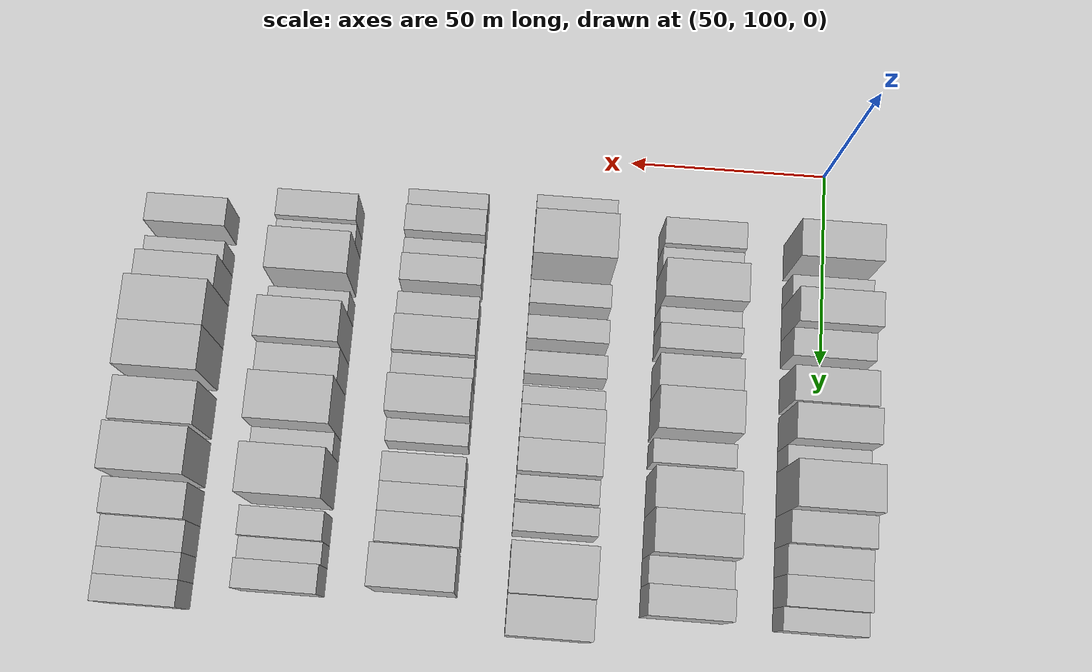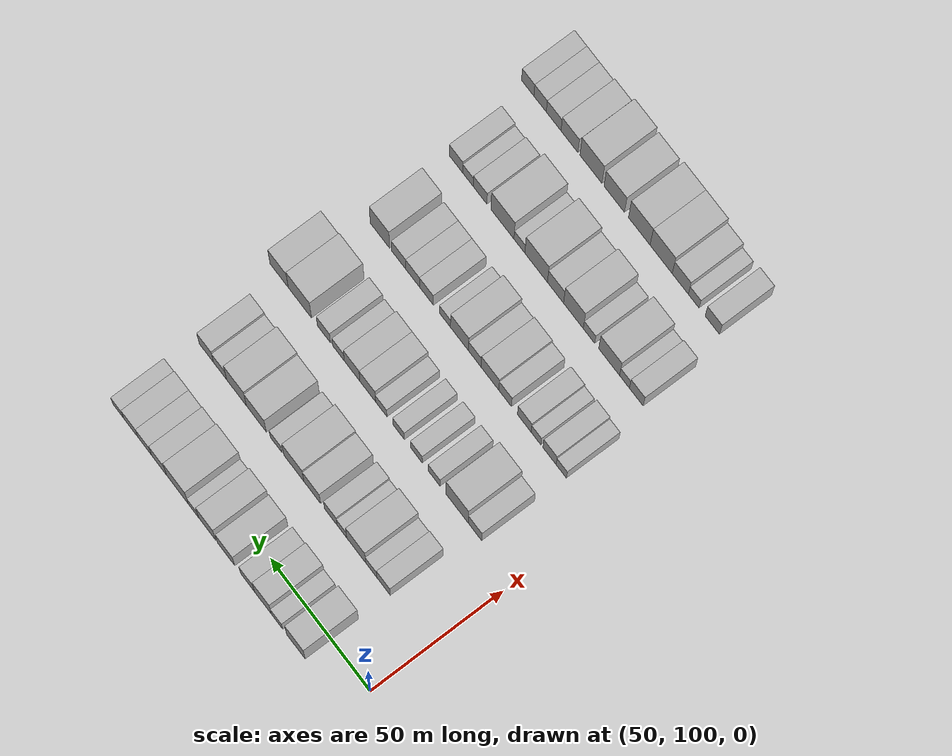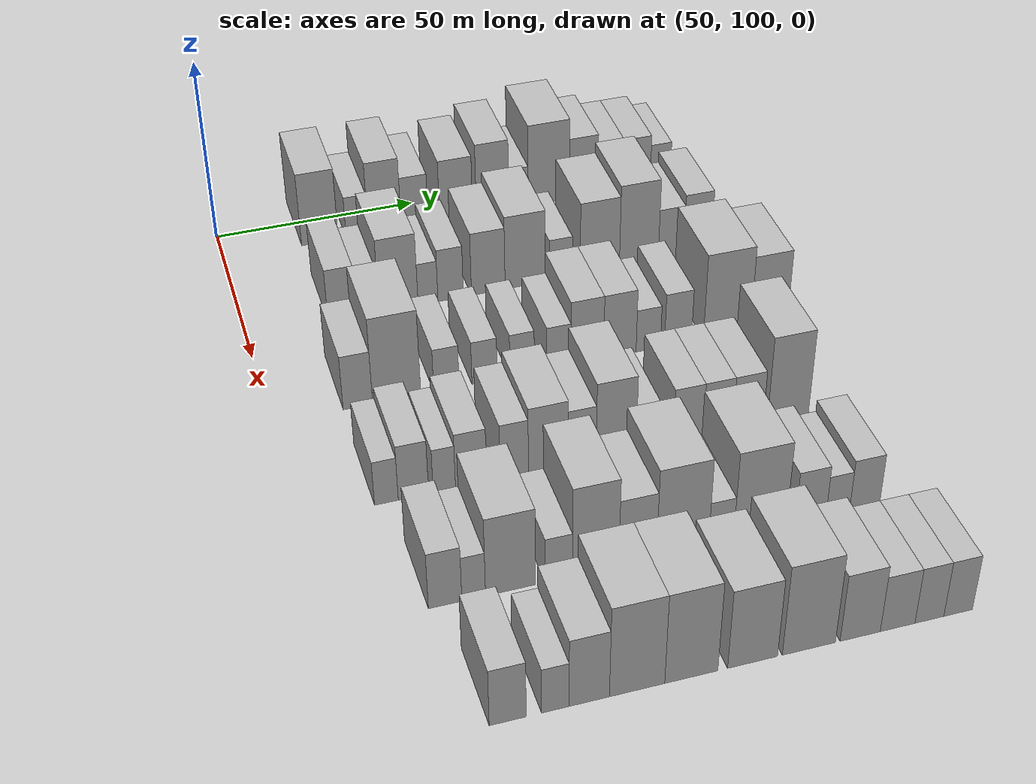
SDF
<sdf version="1.6">
 <world name="default">
  <model name="building_78">
   <static>1</static>
   <pose>50.0000 124.1035 0 0.000000 0.000000 0.000000</pose>
   <link name="link">
    <pose>0 0 10.50 0 0 0</pose>
    <collision name="collision"><geometry><box><size>20.0000 9.2845 21.0000</size></box></geometry></collision>
    <visual name="visual">
     <cast_shadows>0</cast_shadows>
     <geometry><box><size>20.0000 9.2845 21.0000</size></box></geometry>
     <material>
      <script>
       <uri>model://HANNAS_wall/materials/scripts</uri>
       <uri>model://HANNAS_wall/materials/textures</uri>
       <name>vrc/HANNAS_wall</name>
      </script>
     </material>
    </visual>
   </link>
  </model>
  <model name="building_79">
   <static>1</static>
   <pose>50.0000 133.5776 0 0.000000 0.000000 0.000000</pose>
   <link name="link">
    <pose>0 0 6.00 0 0 0</pose>
    <collision name="collision"><geometry><box><size>20.0000 5.6636 12.0000</size></box></geometry></collision>
    <visual name="visual">
     <cast_shadows>0</cast_shadows>
     <geometry><box><size>20.0000 5.6636 12.0000</size></box></geometry>
     <material>
      <script>
       <uri>model://HANNAS_wall/materials/scripts</uri>
       <uri>model://HANNAS_wall/materials/textures</uri>
       <name>vrc/HANNAS_wall</name>
      </script>
     </material>
    </visual>
   </link>
  </model>
  <model name="building_80">
   <static>1</static>
   <pose>50.0000 140.6661 0 0.000000 0.000000 0.000000</pose>
   <link name="link">
    <pose>0 0 10.50 0 0 0</pose>
    <collision name="collision"><geometry><box><size>20.0000 8.5136 21.0000</size></box></geometry></collision>
    <visual name="visual">
     <cast_shadows>0</cast_shadows>
     <geometry><box><size>20.0000 8.5136 21.0000</size></box></geometry>
     <material>
      <script>
       <uri>model://HANNAS_wall/materials/scripts</uri>
       <uri>model://HANNAS_wall/materials/textures</uri>
       <name>vrc/HANNAS_wall</name>
      </script>
     </material>
    </visual>
   </link>
  </model>
  <model name="building_81">
   <static>1</static>
   <pose>50.0000 148.4094 0 0.000000 0.000000 0.000000</pose>
   <link name="link">
    <pose>0 0 7.50 0 0 0</pose>
    <collision name="collision"><geometry><box><size>20.0000 6.9730 15.0000</size></box></geometry></collision>
    <visual name="visual">
     <cast_shadows>0</cast_shadows>
     <geometry><box><size>20.0000 6.9730 15.0000</size></box></geometry>
     <material>
      <script>
       <uri>model://HANNAS_wall/materials/scripts</uri>
       <uri>model://HANNAS_wall/materials/textures</uri>
       <name>vrc/HANNAS_wall</name>
      </script>
     </material>
    </visual>
   </link>
  </model>
  <model name="building_82">
   <static>1</static>
   <pose>50.0000 159.2006 0 0.000000 0.000000 0.000000</pose>
   <link name="link">
    <pose>0 0 9.00 0 0 0</pose>
    <collision name="collision"><geometry><box><size>20.0000 8.6094 18.0000</size></box></geometry></collision>
    <visual name="visual">
     <cast_shadows>0</cast_shadows>
     <geometry><box><size>20.0000 8.6094 18.0000</size></box></geometry>
     <material>
      <script>
       <uri>model://HANNAS_wall/materials/scripts</uri>
       <uri>model://HANNAS_wall/materials/textures</uri>
       <name>vrc/HANNAS_wall</name>
      </script>
     </material>
    </visual>
   </link>
  </model>
  <model name="building_83">
   <static>1</static>
   <pose>50.0000 168.7938 0 0.000000 0.000000 0.000000</pose>
   <link name="link">
    <pose>0 0 10.50 0 0 0</pose>
    <collision name="collision"><geometry><box><size>20.0000 8.5770 21.0000</size></box></geometry></collision>
    <visual name="visual">
     <cast_shadows>0</cast_shadows>
     <geometry><box><size>20.0000 8.5770 21.0000</size></box></geometry>
     <material>
      <script>
       <uri>model://HANNAS_wall/materials/scripts</uri>
       <uri>model://HANNAS_wall/materials/textures</uri>
       <name>vrc/HANNAS_wall</name>
      </script>
     </material>
    </visual>
   </link>
  </model>
  <model name="building_84">
   <static>1</static>
   <pose>50.0000 175.6709 0 0.000000 0.000000 0.000000</pose>
   <link name="link">
    <pose>0 0 6.00 0 0 0</pose>
    <collision name="collision"><geometry><box><size>20.0000 5.1771 12.0000</size></box></geometry></collision>
    <visual name="visual">
     <cast_shadows>0</cast_shadows>
     <geometry><box><size>20.0000 5.1771 12.0000</size></box></geometry>
     <material>
      <script>
       <uri>model://HANNAS_wall/materials/scripts</uri>
       <uri>model://HANNAS_wall/materials/textures</uri>
       <name>vrc/HANNAS_wall</name>
      </script>
     </material>
    </visual>
   </link>
  </model>
  <model name="building_85">
   <static>1</static>
   <pose>50.0000 183.7663 0 0.000000 0.000000 0.000000</pose>
   <link name="link">
    <pose>0 0 12.00 0 0 0</pose>
    <collision name="collision"><geometry><box><size>20.0000 11.0138 24.0000</size></box></geometry></collision>
    <visual name="visual">
     <cast_shadows>0</cast_shadows>
     <geometry><box><size>20.0000 11.0138 24.0000</size></box></geometry>
     <material>
      <script>
       <uri>model://HANNAS_wall/materials/scripts</uri>
       <uri>model://HANNAS_wall/materials/textures</uri>
       <name>vrc/HANNAS_wall</name>
      </script>
     </material>
    </visual>
   </link>
  </model>
  <model name="building_86">
   <static>1</static>
   <pose>50.0000 193.0932 0 0.000000 0.000000 0.000000</pose>
   <link name="link">
    <pose>0 0 9.00 0 0 0</pose>
    <collision name="collision"><geometry><box><size>20.0000 7.6400 18.0000</size></box></geometry></collision>
    <visual name="visual">
     <cast_shadows>0</cast_shadows>
     <geometry><box><size>20.0000 7.6400 18.0000</size></box></geometry>
     <material>
      <script>
       <uri>model://HANNAS_wall/materials/scripts</uri>
       <uri>model://HANNAS_wall/materials/textures</uri>
       <name>vrc/HANNAS_wall</name>
      </script>
     </material>
    </visual>
   </link>
  </model>
  <model name="building_87">
   <static>1</static>
   <pose>50.0000 200.4348 0 0.000000 0.000000 0.000000</pose>
   <link name="link">
    <pose>0 0 7.50 0 0 0</pose>
    <collision name="collision"><geometry><box><size>20.0000 7.0432 15.0000</size></box></geometry></collision>
    <visual name="visual">
     <cast_shadows>0</cast_shadows>
     <geometry><box><size>20.0000 7.0432 15.0000</size></box></geometry>
     <material>
      <script>
       <uri>model://HANNAS_wall/materials/scripts</uri>
       <uri>model://HANNAS_wall/materials/textures</uri>
       <name>vrc/HANNAS_wall</name>
      </script>
     </material>
    </visual>
   </link>
  </model>
  <model name="building_88">
   <static>1</static>
   <pose>50.0000 207.5935 0 0.000000 0.000000 0.000000</pose>
   <link name="link">
    <pose>0 0 7.50 0 0 0</pose>
    <collision name="collision"><geometry><box><size>20.0000 7.2742 15.0000</size></box></geometry></collision>
    <visual name="visual">
     <cast_shadows>0</cast_shadows>
     <geometry><box><size>20.0000 7.2742 15.0000</size></box></geometry>
     <material>
      <script>
       <uri>model://HANNAS_wall/materials/scripts</uri>
       <uri>model://HANNAS_wall/materials/textures</uri>
       <name>vrc/HANNAS_wall</name>
      </script>
     </material>
    </visual>
   </link>
  </model>
  <model name="building_89">
   <static>1</static>
   <pose>50.0000 213.9950 0 0.000000 0.000000 0.000000</pose>
   <link name="link">
    <pose>0 0 6.00 0 0 0</pose>
    <collision name="collision"><geometry><box><size>20.0000 5.5289 12.0000</size></box></geometry></collision>
    <visual name="visual">
     <cast_shadows>0</cast_shadows>
     <geometry><box><size>20.0000 5.5289 12.0000</size></box></geometry>
     <material>
      <script>
       <uri>model://HANNAS_wall/materials/scripts</uri>
       <uri>model://HANNAS_wall/materials/textures</uri>
       <name>vrc/HANNAS_wall</name>
      </script>
     </material>
    </visual>
   </link>
  </model>
  <model name="building_201">
   <static>1</static>
   <pose>82.0000 122.7673 0 0.000000 0.000000 0.000000</pose>
   <link name="link">
    <pose>0 0 7.50 0 0 0</pose>
    <collision name="collision"><geometry><box><size>20.0000 6.7565 15.0000</size></box></geometry></collision>
    <visual name="visual">
     <cast_shadows>0</cast_shadows>
     <geometry><box><size>20.0000 6.7565 15.0000</size></box></geometry>
     <material>
      <script>
       <uri>model://HANNAS_wall/materials/scripts</uri>
       <uri>model://HANNAS_wall/materials/textures</uri>
       <name>vrc/HANNAS_wall</name>
      </script>
     </material>
    </visual>
   </link>
  </model>
  <model name="building_202">
   <static>1</static>
   <pose>82.0000 128.9505 0 0.000000 0.000000 0.000000</pose>
   <link name="link">
    <pose>0 0 6.00 0 0 0</pose>
    <collision name="collision"><geometry><box><size>20.0000 5.6098 12.0000</size></box></geometry></collision>
    <visual name="visual">
     <cast_shadows>0</cast_shadows>
     <geometry><box><size>20.0000 5.6098 12.0000</size></box></geometry>
     <material>
      <script>
       <uri>model://HANNAS_wall/materials/scripts</uri>
       <uri>model://HANNAS_wall/materials/textures</uri>
       <name>vrc/HANNAS_wall</name>
      </script>
     </material>
    </visual>
   </link>
  </model>
  <model name="building_203">
   <static>1</static>
   <pose>82.0000 136.5222 0 0.000000 0.000000 0.000000</pose>
   <link name="link">
    <pose>0 0 10.50 0 0 0</pose>
    <collision name="collision"><geometry><box><size>20.0000 9.5335 21.0000</size></box></geometry></collision>
    <visual name="visual">
     <cast_shadows>0</cast_shadows>
     <geometry><box><size>20.0000 9.5335 21.0000</size></box></geometry>
     <material>
      <script>
       <uri>model://HANNAS_wall/materials/scripts</uri>
       <uri>model://HANNAS_wall/materials/textures</uri>
       <name>vrc/HANNAS_wall</name>
      </script>
     </material>
    </visual>
   </link>
  </model>
  <model name="building_204">
   <static>1</static>
   <pose>82.0000 143.7246 0 0.000000 0.000000 0.000000</pose>
   <link name="link">
    <pose>0 0 6.00 0 0 0</pose>
    <collision name="collision"><geometry><box><size>20.0000 4.8713 12.0000</size></box></geometry></collision>
    <visual name="visual">
     <cast_shadows>0</cast_shadows>
     <geometry><box><size>20.0000 4.8713 12.0000</size></box></geometry>
     <material>
      <script>
       <uri>model://HANNAS_wall/materials/scripts</uri>
       <uri>model://HANNAS_wall/materials/textures</uri>
       <name>vrc/HANNAS_wall</name>
      </script>
     </material>
    </visual>
   </link>
  </model>
  <model name="building_205">
   <static>1</static>
   <pose>82.0000 149.3149 0 0.000000 0.000000 0.000000</pose>
   <link name="link">
    <pose>0 0 7.50 0 0 0</pose>
    <collision name="collision"><geometry><box><size>20.0000 6.3094 15.0000</size></box></geometry></collision>
    <visual name="visual">
     <cast_shadows>0</cast_shadows>
     <geometry><box><size>20.0000 6.3094 15.0000</size></box></geometry>
     <material>
      <script>
       <uri>model://HANNAS_wall/materials/scripts</uri>
       <uri>model://HANNAS_wall/materials/textures</uri>
       <name>vrc/HANNAS_wall</name>
      </script>
     </material>
    </visual>
   </link>
  </model>
  <model name="building_206">
   <static>1</static>
   <pose>82.0000 158.6747 0 0.000000 0.000000 0.000000</pose>
   <link name="link">
    <pose>0 0 9.00 0 0 0</pose>
    <collision name="collision"><geometry><box><size>20.0000 8.4101 18.0000</size></box></geometry></collision>
    <visual name="visual">
     <cast_shadows>0</cast_shadows>
     <geometry><box><size>20.0000 8.4101 18.0000</size></box></geometry>
     <material>
      <script>
       <uri>model://HANNAS_wall/materials/scripts</uri>
       <uri>model://HANNAS_wall/materials/textures</uri>
       <name>vrc/HANNAS_wall</name>
      </script>
     </material>
    </visual>
   </link>
  </model>
  <model name="building_207">
   <static>1</static>
   <pose>82.0000 167.9612 0 0.000000 0.000000 0.000000</pose>
   <link name="link">
    <pose>0 0 10.50 0 0 0</pose>
    <collision name="collision"><geometry><box><size>20.0000 10.1630 21.0000</size></box></geometry></collision>
    <visual name="visual">
     <cast_shadows>0</cast_shadows>
     <geometry><box><size>20.0000 10.1630 21.0000</size></box></geometry>
     <material>
      <script>
       <uri>model://HANNAS_wall/materials/scripts</uri>
       <uri>model://HANNAS_wall/materials/textures</uri>
       <name>vrc/HANNAS_wall</name>
      </script>
     </material>
    </visual>
   </link>
  </model>
  <model name="building_208">
   <static>1</static>
   <pose>82.0000 176.9507 0 0.000000 0.000000 0.000000</pose>
   <link name="link">
    <pose>0 0 6.00 0 0 0</pose>
    <collision name="collision"><geometry><box><size>20.0000 5.8160 12.0000</size></box></geometry></collision>
    <visual name="visual">
     <cast_shadows>0</cast_shadows>
     <geometry><box><size>20.0000 5.8160 12.0000</size></box></geometry>
     <material>
      <script>
       <uri>model://HANNAS_wall/materials/scripts</uri>
       <uri>model://HANNAS_wall/materials/textures</uri>
       <name>vrc/HANNAS_wall</name>
      </script>
     </material>
    </visual>
   </link>
  </model>
  <model name="building_209">
   <static>1</static>
   <pose>82.0000 186.9043 0 0.000000 0.000000 0.000000</pose>
   <link name="link">
    <pose>0 0 10.50 0 0 0</pose>
    <collision name="collision"><geometry><box><size>20.0000 10.0912 21.0000</size></box></geometry></collision>
    <visual name="visual">
     <cast_shadows>0</cast_shadows>
     <geometry><box><size>20.0000 10.0912 21.0000</size></box></geometry>
     <material>
      <script>
       <uri>model://HANNAS_wall/materials/scripts</uri>
       <uri>model://HANNAS_wall/materials/textures</uri>
       <name>vrc/HANNAS_wall</name>
      </script>
     </material>
    </visual>
   </link>
  </model>
  <model name="building_210">
   <static>1</static>
   <pose>82.0000 196.9864 0 0.000000 0.000000 0.000000</pose>
   <link name="link">
    <pose>0 0 12.00 0 0 0</pose>
    <collision name="collision"><geometry><box><size>20.0000 10.0731 24.0000</size></box></geometry></collision>
    <visual name="visual">
     <cast_shadows>0</cast_shadows>
     <geometry><box><size>20.0000 10.0731 24.0000</size></box></geometry>
     <material>
      <script>
       <uri>model://HANNAS_wall/materials/scripts</uri>
       <uri>model://HANNAS_wall/materials/textures</uri>
       <name>vrc/HANNAS_wall</name>
      </script>
     </material>
    </visual>
   </link>
  </model>
  <model name="building_211">
   <static>1</static>
   <pose>82.0000 205.3523 0 0.000000 0.000000 0.000000</pose>
   <link name="link">
    <pose>0 0 7.50 0 0 0</pose>
    <collision name="collision"><geometry><box><size>20.0000 6.6586 15.0000</size></box></geometry></collision>
    <visual name="visual">
     <cast_shadows>0</cast_shadows>
     <geometry><box><size>20.0000 6.6586 15.0000</size></box></geometry>
     <material>
      <script>
       <uri>model://HANNAS_wall/materials/scripts</uri>
       <uri>model://HANNAS_wall/materials/textures</uri>
       <name>vrc/HANNAS_wall</name>
      </script>
     </material>
    </visual>
   </link>
  </model>
  <model name="building_212">
   <static>1</static>
   <pose>82.0000 212.3056 0 0.000000 0.000000 0.000000</pose>
   <link name="link">
    <pose>0 0 9.00 0 0 0</pose>
    <collision name="collision"><geometry><box><size>20.0000 7.2480 18.0000</size></box></geometry></collision>
    <visual name="visual">
     <cast_shadows>0</cast_shadows>
     <geometry><box><size>20.0000 7.2480 18.0000</size></box></geometry>
     <material>
      <script>
       <uri>model://HANNAS_wall/materials/scripts</uri>
       <uri>model://HANNAS_wall/materials/textures</uri>
       <name>vrc/HANNAS_wall</name>
      </script>
     </material>
    </visual>
   </link>
  </model>
  <model name="building_325">
   <static>1</static>
   <pose>114.0000 119.4392 0 0.000000 0.000000 0.000000</pose>
   <link name="link">
    <pose>0 0 7.50 0 0 0</pose>
    <collision name="collision"><geometry><box><size>20.0000 6.7421 15.0000</size></box></geometry></collision>
    <visual name="visual">
     <cast_shadows>0</cast_shadows>
     <geometry><box><size>20.0000 6.7421 15.0000</size></box></geometry>
     <material>
      <script>
       <uri>model://HANNAS_wall/materials/scripts</uri>
       <uri>model://HANNAS_wall/materials/textures</uri>
       <name>vrc/HANNAS_wall</name>
      </script>
     </material>
    </visual>
   </link>
  </model>
  <model name="building_326">
   <static>1</static>
   <pose>114.0000 128.3633 0 0.000000 0.000000 0.000000</pose>
   <link name="link">
    <pose>0 0 12.00 0 0 0</pose>
    <collision name="collision"><geometry><box><size>20.0000 11.1061 24.0000</size></box></geometry></collision>
    <visual name="visual">
     <cast_shadows>0</cast_shadows>
     <geometry><box><size>20.0000 11.1061 24.0000</size></box></geometry>
     <material>
      <script>
       <uri>model://HANNAS_wall/materials/scripts</uri>
       <uri>model://HANNAS_wall/materials/textures</uri>
       <name>vrc/HANNAS_wall</name>
      </script>
     </material>
    </visual>
   </link>
  </model>
  <model name="building_327">
   <static>1</static>
   <pose>114.0000 139.8817 0 0.000000 0.000000 0.000000</pose>
   <link name="link">
    <pose>0 0 6.00 0 0 0</pose>
    <collision name="collision"><geometry><box><size>20.0000 5.9307 12.0000</size></box></geometry></collision>
    <visual name="visual">
     <cast_shadows>0</cast_shadows>
     <geometry><box><size>20.0000 5.9307 12.0000</size></box></geometry>
     <material>
      <script>
       <uri>model://HANNAS_wall/materials/scripts</uri>
       <uri>model://HANNAS_wall/materials/textures</uri>
       <name>vrc/HANNAS_wall</name>
      </script>
     </material>
    </visual>
   </link>
  </model>
  <model name="building_328">
   <static>1</static>
   <pose>114.0000 148.8246 0 0.000000 0.000000 0.000000</pose>
   <link name="link">
    <pose>0 0 6.00 0 0 0</pose>
    <collision name="collision"><geometry><box><size>20.0000 5.9550 12.0000</size></box></geometry></collision>
    <visual name="visual">
     <cast_shadows>0</cast_shadows>
     <geometry><box><size>20.0000 5.9550 12.0000</size></box></geometry>
     <material>
      <script>
       <uri>model://HANNAS_wall/materials/scripts</uri>
       <uri>model://HANNAS_wall/materials/textures</uri>
       <name>vrc/HANNAS_wall</name>
      </script>
     </material>
    </visual>
   </link>
  </model>
  <model name="building_329">
   <static>1</static>
   <pose>114.0000 157.7061 0 0.000000 0.000000 0.000000</pose>
   <link name="link">
    <pose>0 0 6.00 0 0 0</pose>
    <collision name="collision"><geometry><box><size>20.0000 5.8081 12.0000</size></box></geometry></collision>
    <visual name="visual">
     <cast_shadows>0</cast_shadows>
     <geometry><box><size>20.0000 5.8081 12.0000</size></box></geometry>
     <material>
      <script>
       <uri>model://HANNAS_wall/materials/scripts</uri>
       <uri>model://HANNAS_wall/materials/textures</uri>
       <name>vrc/HANNAS_wall</name>
      </script>
     </material>
    </visual>
   </link>
  </model>
  <model name="building_330">
   <static>1</static>
   <pose>114.0000 166.4775 0 0.000000 0.000000 0.000000</pose>
   <link name="link">
    <pose>0 0 6.00 0 0 0</pose>
    <collision name="collision"><geometry><box><size>20.0000 5.7348 12.0000</size></box></geometry></collision>
    <visual name="visual">
     <cast_shadows>0</cast_shadows>
     <geometry><box><size>20.0000 5.7348 12.0000</size></box></geometry>
     <material>
      <script>
       <uri>model://HANNAS_wall/materials/scripts</uri>
       <uri>model://HANNAS_wall/materials/textures</uri>
       <name>vrc/HANNAS_wall</name>
      </script>
     </material>
    </visual>
   </link>
  </model>
  <model name="building_331">
   <static>1</static>
   <pose>114.0000 173.3081 0 0.000000 0.000000 0.000000</pose>
   <link name="link">
    <pose>0 0 9.00 0 0 0</pose>
    <collision name="collision"><geometry><box><size>20.0000 7.9264 18.0000</size></box></geometry></collision>
    <visual name="visual">
     <cast_shadows>0</cast_shadows>
     <geometry><box><size>20.0000 7.9264 18.0000</size></box></geometry>
     <material>
      <script>
       <uri>model://HANNAS_wall/materials/scripts</uri>
       <uri>model://HANNAS_wall/materials/textures</uri>
       <name>vrc/HANNAS_wall</name>
      </script>
     </material>
    </visual>
   </link>
  </model>
  <model name="building_332">
   <static>1</static>
   <pose>114.0000 181.2207 0 0.000000 0.000000 0.000000</pose>
   <link name="link">
    <pose>0 0 9.00 0 0 0</pose>
    <collision name="collision"><geometry><box><size>20.0000 7.8988 18.0000</size></box></geometry></collision>
    <visual name="visual">
     <cast_shadows>0</cast_shadows>
     <geometry><box><size>20.0000 7.8988 18.0000</size></box></geometry>
     <material>
      <script>
       <uri>model://HANNAS_wall/materials/scripts</uri>
       <uri>model://HANNAS_wall/materials/textures</uri>
       <name>vrc/HANNAS_wall</name>
      </script>
     </material>
    </visual>
   </link>
  </model>
  <model name="building_333">
   <static>1</static>
   <pose>114.0000 188.1583 0 0.000000 0.000000 0.000000</pose>
   <link name="link">
    <pose>0 0 6.00 0 0 0</pose>
    <collision name="collision"><geometry><box><size>20.0000 5.9766 12.0000</size></box></geometry></collision>
    <visual name="visual">
     <cast_shadows>0</cast_shadows>
     <geometry><box><size>20.0000 5.9766 12.0000</size></box></geometry>
     <material>
      <script>
       <uri>model://HANNAS_wall/materials/scripts</uri>
       <uri>model://HANNAS_wall/materials/textures</uri>
       <name>vrc/HANNAS_wall</name>
      </script>
     </material>
    </visual>
   </link>
  </model>
  <model name="building_334">
   <static>1</static>
   <pose>114.0000 195.4826 0 0.000000 0.000000 0.000000</pose>
   <link name="link">
    <pose>0 0 7.50 0 0 0</pose>
    <collision name="collision"><geometry><box><size>20.0000 6.6721 15.0000</size></box></geometry></collision>
    <visual name="visual">
     <cast_shadows>0</cast_shadows>
     <geometry><box><size>20.0000 6.6721 15.0000</size></box></geometry>
     <material>
      <script>
       <uri>model://HANNAS_wall/materials/scripts</uri>
       <uri>model://HANNAS_wall/materials/textures</uri>
       <name>vrc/HANNAS_wall</name>
      </script>
     </material>
    </visual>
   </link>
  </model>
  <model name="building_335">
   <static>1</static>
   <pose>114.0000 207.7199 0 0.000000 0.000000 0.000000</pose>
   <link name="link">
    <pose>0 0 12.00 0 0 0</pose>
    <collision name="collision"><geometry><box><size>20.0000 11.8024 24.0000</size></box></geometry></collision>
    <visual name="visual">
     <cast_shadows>0</cast_shadows>
     <geometry><box><size>20.0000 11.8024 24.0000</size></box></geometry>
     <material>
      <script>
       <uri>model://HANNAS_wall/materials/scripts</uri>
       <uri>model://HANNAS_wall/materials/textures</uri>
       <name>vrc/HANNAS_wall</name>
      </script>
     </material>
    </visual>
   </link>
  </model>
  <model name="building_336">
   <static>1</static>
   <pose>114.0000 218.2661 0 0.000000 0.000000 0.000000</pose>
   <link name="link">
    <pose>0 0 10.50 0 0 0</pose>
    <collision name="collision"><geometry><box><size>20.0000 9.2901 21.0000</size></box></geometry></collision>
    <visual name="visual">
     <cast_shadows>0</cast_shadows>
     <geometry><box><size>20.0000 9.2901 21.0000</size></box></geometry>
     <material>
      <script>
       <uri>model://HANNAS_wall/materials/scripts</uri>
       <uri>model://HANNAS_wall/materials/textures</uri>
       <name>vrc/HANNAS_wall</name>
      </script>
     </material>
    </visual>
   </link>
  </model>
  <model name="building_440">
   <static>1</static>
   <pose>146.0000 118.4197 0 0.000000 0.000000 0.000000</pose>
   <link name="link">
    <pose>0 0 6.00 0 0 0</pose>
    <collision name="collision"><geometry><box><size>20.0000 5.1587 12.0000</size></box></geometry></collision>
    <visual name="visual">
     <cast_shadows>0</cast_shadows>
     <geometry><box><size>20.0000 5.1587 12.0000</size></box></geometry>
     <material>
      <script>
       <uri>model://HANNAS_wall/materials/scripts</uri>
       <uri>model://HANNAS_wall/materials/textures</uri>
       <name>vrc/HANNAS_wall</name>
      </script>
     </material>
    </visual>
   </link>
  </model>
  <model name="building_441">
   <static>1</static>
   <pose>146.0000 124.2958 0 0.000000 0.000000 0.000000</pose>
   <link name="link">
    <pose>0 0 7.50 0 0 0</pose>
    <collision name="collision"><geometry><box><size>20.0000 6.5936 15.0000</size></box></geometry></collision>
    <visual name="visual">
     <cast_shadows>0</cast_shadows>
     <geometry><box><size>20.0000 6.5936 15.0000</size></box></geometry>
     <material>
      <script>
       <uri>model://HANNAS_wall/materials/scripts</uri>
       <uri>model://HANNAS_wall/materials/textures</uri>
       <name>vrc/HANNAS_wall</name>
      </script>
     </material>
    </visual>
   </link>
  </model>
  <model name="building_442">
   <static>1</static>
   <pose>146.0000 131.0421 0 0.000000 0.000000 0.000000</pose>
   <link name="link">
    <pose>0 0 6.00 0 0 0</pose>
    <collision name="collision"><geometry><box><size>20.0000 4.8989 12.0000</size></box></geometry></collision>
    <visual name="visual">
     <cast_shadows>0</cast_shadows>
     <geometry><box><size>20.0000 4.8989 12.0000</size></box></geometry>
     <material>
      <script>
       <uri>model://HANNAS_wall/materials/scripts</uri>
       <uri>model://HANNAS_wall/materials/textures</uri>
       <name>vrc/HANNAS_wall</name>
      </script>
     </material>
    </visual>
   </link>
  </model>
  <model name="building_443">
   <static>1</static>
   <pose>146.0000 136.9226 0 0.000000 0.000000 0.000000</pose>
   <link name="link">
    <pose>0 0 7.50 0 0 0</pose>
    <collision name="collision"><geometry><box><size>20.0000 6.8622 15.0000</size></box></geometry></collision>
    <visual name="visual">
     <cast_shadows>0</cast_shadows>
     <geometry><box><size>20.0000 6.8622 15.0000</size></box></geometry>
     <material>
      <script>
       <uri>model://HANNAS_wall/materials/scripts</uri>
       <uri>model://HANNAS_wall/materials/textures</uri>
       <name>vrc/HANNAS_wall</name>
      </script>
     </material>
    </visual>
   </link>
  </model>
  <model name="building_444">
   <static>1</static>
   <pose>146.0000 146.5128 0 0.000000 0.000000 0.000000</pose>
   <link name="link">
    <pose>0 0 7.50 0 0 0</pose>
    <collision name="collision"><geometry><box><size>20.0000 6.3182 15.0000</size></box></geometry></collision>
    <visual name="visual">
     <cast_shadows>0</cast_shadows>
     <geometry><box><size>20.0000 6.3182 15.0000</size></box></geometry>
     <material>
      <script>
       <uri>model://HANNAS_wall/materials/scripts</uri>
       <uri>model://HANNAS_wall/materials/textures</uri>
       <name>vrc/HANNAS_wall</name>
      </script>
     </material>
    </visual>
   </link>
  </model>
  <model name="building_445">
   <static>1</static>
   <pose>146.0000 154.1368 0 0.000000 0.000000 0.000000</pose>
   <link name="link">
    <pose>0 0 9.00 0 0 0</pose>
    <collision name="collision"><geometry><box><size>20.0000 8.9298 18.0000</size></box></geometry></collision>
    <visual name="visual">
     <cast_shadows>0</cast_shadows>
     <geometry><box><size>20.0000 8.9298 18.0000</size></box></geometry>
     <material>
      <script>
       <uri>model://HANNAS_wall/materials/scripts</uri>
       <uri>model://HANNAS_wall/materials/textures</uri>
       <name>vrc/HANNAS_wall</name>
      </script>
     </material>
    </visual>
   </link>
  </model>
  <model name="building_446">
   <static>1</static>
   <pose>146.0000 161.7561 0 0.000000 0.000000 0.000000</pose>
   <link name="link">
    <pose>0 0 7.50 0 0 0</pose>
    <collision name="collision"><geometry><box><size>20.0000 6.3088 15.0000</size></box></geometry></collision>
    <visual name="visual">
     <cast_shadows>0</cast_shadows>
     <geometry><box><size>20.0000 6.3088 15.0000</size></box></geometry>
     <material>
      <script>
       <uri>model://HANNAS_wall/materials/scripts</uri>
       <uri>model://HANNAS_wall/materials/textures</uri>
       <name>vrc/HANNAS_wall</name>
      </script>
     </material>
    </visual>
   </link>
  </model>
  <model name="building_447">
   <static>1</static>
   <pose>146.0000 169.4738 0 0.000000 0.000000 0.000000</pose>
   <link name="link">
    <pose>0 0 10.50 0 0 0</pose>
    <collision name="collision"><geometry><box><size>20.0000 9.1266 21.0000</size></box></geometry></collision>
    <visual name="visual">
     <cast_shadows>0</cast_shadows>
     <geometry><box><size>20.0000 9.1266 21.0000</size></box></geometry>
     <material>
      <script>
       <uri>model://HANNAS_wall/materials/scripts</uri>
       <uri>model://HANNAS_wall/materials/textures</uri>
       <name>vrc/HANNAS_wall</name>
      </script>
     </material>
    </visual>
   </link>
  </model>
  <model name="building_448">
   <static>1</static>
   <pose>146.0000 176.8246 0 0.000000 0.000000 0.000000</pose>
   <link name="link">
    <pose>0 0 6.00 0 0 0</pose>
    <collision name="collision"><geometry><box><size>20.0000 5.5750 12.0000</size></box></geometry></collision>
    <visual name="visual">
     <cast_shadows>0</cast_shadows>
     <geometry><box><size>20.0000 5.5750 12.0000</size></box></geometry>
     <material>
      <script>
       <uri>model://HANNAS_wall/materials/scripts</uri>
       <uri>model://HANNAS_wall/materials/textures</uri>
       <name>vrc/HANNAS_wall</name>
      </script>
     </material>
    </visual>
   </link>
  </model>
  <model name="building_449">
   <static>1</static>
   <pose>146.0000 186.1203 0 0.000000 0.000000 0.000000</pose>
   <link name="link">
    <pose>0 0 7.50 0 0 0</pose>
    <collision name="collision"><geometry><box><size>20.0000 7.0166 15.0000</size></box></geometry></collision>
    <visual name="visual">
     <cast_shadows>0</cast_shadows>
     <geometry><box><size>20.0000 7.0166 15.0000</size></box></geometry>
     <material>
      <script>
       <uri>model://HANNAS_wall/materials/scripts</uri>
       <uri>model://HANNAS_wall/materials/textures</uri>
       <name>vrc/HANNAS_wall</name>
      </script>
     </material>
    </visual>
   </link>
  </model>
  <model name="building_450">
   <static>1</static>
   <pose>146.0000 193.1023 0 0.000000 0.000000 0.000000</pose>
   <link name="link">
    <pose>0 0 7.50 0 0 0</pose>
    <collision name="collision"><geometry><box><size>20.0000 6.9472 15.0000</size></box></geometry></collision>
    <visual name="visual">
     <cast_shadows>0</cast_shadows>
     <geometry><box><size>20.0000 6.9472 15.0000</size></box></geometry>
     <material>
      <script>
       <uri>model://HANNAS_wall/materials/scripts</uri>
       <uri>model://HANNAS_wall/materials/textures</uri>
       <name>vrc/HANNAS_wall</name>
      </script>
     </material>
    </visual>
   </link>
  </model>
  <model name="building_451">
   <static>1</static>
   <pose>146.0000 200.1755 0 0.000000 0.000000 0.000000</pose>
   <link name="link">
    <pose>0 0 7.50 0 0 0</pose>
    <collision name="collision"><geometry><box><size>20.0000 7.1992 15.0000</size></box></geometry></collision>
    <visual name="visual">
     <cast_shadows>0</cast_shadows>
     <geometry><box><size>20.0000 7.1992 15.0000</size></box></geometry>
     <material>
      <script>
       <uri>model://HANNAS_wall/materials/scripts</uri>
       <uri>model://HANNAS_wall/materials/textures</uri>
       <name>vrc/HANNAS_wall</name>
      </script>
     </material>
    </visual>
   </link>
  </model>
  <model name="building_452">
   <static>1</static>
   <pose>146.0000 209.6921 0 0.000000 0.000000 0.000000</pose>
   <link name="link">
    <pose>0 0 12.00 0 0 0</pose>
    <collision name="collision"><geometry><box><size>20.0000 9.8341 24.0000</size></box></geometry></collision>
    <visual name="visual">
     <cast_shadows>0</cast_shadows>
     <geometry><box><size>20.0000 9.8341 24.0000</size></box></geometry>
     <material>
      <script>
       <uri>model://HANNAS_wall/materials/scripts</uri>
       <uri>model://HANNAS_wall/materials/textures</uri>
       <name>vrc/HANNAS_wall</name>
      </script>
     </material>
    </visual>
   </link>
  </model>
  <model name="building_564">
   <static>1</static>
   <pose>178.0000 122.8454 0 0.000000 0.000000 0.000000</pose>
   <link name="link">
    <pose>0 0 7.50 0 0 0</pose>
    <collision name="collision"><geometry><box><size>20.0000 6.8839 15.0000</size></box></geometry></collision>
    <visual name="visual">
     <cast_shadows>0</cast_shadows>
     <geometry><box><size>20.0000 6.8839 15.0000</size></box></geometry>
     <material>
      <script>
       <uri>model://HANNAS_wall/materials/scripts</uri>
       <uri>model://HANNAS_wall/materials/textures</uri>
       <name>vrc/HANNAS_wall</name>
      </script>
     </material>
    </visual>
   </link>
  </model>
  <model name="building_565">
   <static>1</static>
   <pose>178.0000 128.7365 0 0.000000 0.000000 0.000000</pose>
   <link name="link">
    <pose>0 0 6.00 0 0 0</pose>
    <collision name="collision"><geometry><box><size>20.0000 4.8984 12.0000</size></box></geometry></collision>
    <visual name="visual">
     <cast_shadows>0</cast_shadows>
     <geometry><box><size>20.0000 4.8984 12.0000</size></box></geometry>
     <material>
      <script>
       <uri>model://HANNAS_wall/materials/scripts</uri>
       <uri>model://HANNAS_wall/materials/textures</uri>
       <name>vrc/HANNAS_wall</name>
      </script>
     </material>
    </visual>
   </link>
  </model>
  <model name="building_566">
   <static>1</static>
   <pose>178.0000 136.4004 0 0.000000 0.000000 0.000000</pose>
   <link name="link">
    <pose>0 0 10.50 0 0 0</pose>
    <collision name="collision"><geometry><box><size>20.0000 10.4294 21.0000</size></box></geometry></collision>
    <visual name="visual">
     <cast_shadows>0</cast_shadows>
     <geometry><box><size>20.0000 10.4294 21.0000</size></box></geometry>
     <material>
      <script>
       <uri>model://HANNAS_wall/materials/scripts</uri>
       <uri>model://HANNAS_wall/materials/textures</uri>
       <name>vrc/HANNAS_wall</name>
      </script>
     </material>
    </visual>
   </link>
  </model>
  <model name="building_567">
   <static>1</static>
   <pose>178.0000 146.4877 0 0.000000 0.000000 0.000000</pose>
   <link name="link">
    <pose>0 0 6.00 0 0 0</pose>
    <collision name="collision"><geometry><box><size>20.0000 5.7451 12.0000</size></box></geometry></collision>
    <visual name="visual">
     <cast_shadows>0</cast_shadows>
     <geometry><box><size>20.0000 5.7451 12.0000</size></box></geometry>
     <material>
      <script>
       <uri>model://HANNAS_wall/materials/scripts</uri>
       <uri>model://HANNAS_wall/materials/textures</uri>
       <name>vrc/HANNAS_wall</name>
      </script>
     </material>
    </visual>
   </link>
  </model>
  <model name="building_568">
   <static>1</static>
   <pose>178.0000 154.3072 0 0.000000 0.000000 0.000000</pose>
   <link name="link">
    <pose>0 0 12.00 0 0 0</pose>
    <collision name="collision"><geometry><box><size>20.0000 9.8941 24.0000</size></box></geometry></collision>
    <visual name="visual">
     <cast_shadows>0</cast_shadows>
     <geometry><box><size>20.0000 9.8941 24.0000</size></box></geometry>
     <material>
      <script>
       <uri>model://HANNAS_wall/materials/scripts</uri>
       <uri>model://HANNAS_wall/materials/textures</uri>
       <name>vrc/HANNAS_wall</name>
      </script>
     </material>
    </visual>
   </link>
  </model>
  <model name="building_569">
   <static>1</static>
   <pose>178.0000 163.3010 0 0.000000 0.000000 0.000000</pose>
   <link name="link">
    <pose>0 0 9.00 0 0 0</pose>
    <collision name="collision"><geometry><box><size>20.0000 8.0934 18.0000</size></box></geometry></collision>
    <visual name="visual">
     <cast_shadows>0</cast_shadows>
     <geometry><box><size>20.0000 8.0934 18.0000</size></box></geometry>
     <material>
      <script>
       <uri>model://HANNAS_wall/materials/scripts</uri>
       <uri>model://HANNAS_wall/materials/textures</uri>
       <name>vrc/HANNAS_wall</name>
      </script>
     </material>
    </visual>
   </link>
  </model>
  <model name="building_570">
   <static>1</static>
   <pose>178.0000 173.0251 0 0.000000 0.000000 0.000000</pose>
   <link name="link">
    <pose>0 0 12.00 0 0 0</pose>
    <collision name="collision"><geometry><box><size>20.0000 11.3548 24.0000</size></box></geometry></collision>
    <visual name="visual">
     <cast_shadows>0</cast_shadows>
     <geometry><box><size>20.0000 11.3548 24.0000</size></box></geometry>
     <material>
      <script>
       <uri>model://HANNAS_wall/materials/scripts</uri>
       <uri>model://HANNAS_wall/materials/textures</uri>
       <name>vrc/HANNAS_wall</name>
      </script>
     </material>
    </visual>
   </link>
  </model>
  <model name="building_571">
   <static>1</static>
   <pose>178.0000 181.4613 0 0.000000 0.000000 0.000000</pose>
   <link name="link">
    <pose>0 0 6.00 0 0 0</pose>
    <collision name="collision"><geometry><box><size>20.0000 5.5175 12.0000</size></box></geometry></collision>
    <visual name="visual">
     <cast_shadows>0</cast_shadows>
     <geometry><box><size>20.0000 5.5175 12.0000</size></box></geometry>
     <material>
      <script>
       <uri>model://HANNAS_wall/materials/scripts</uri>
       <uri>model://HANNAS_wall/materials/textures</uri>
       <name>vrc/HANNAS_wall</name>
      </script>
     </material>
    </visual>
   </link>
  </model>
  <model name="building_572">
   <static>1</static>
   <pose>178.0000 190.0439 0 0.000000 0.000000 0.000000</pose>
   <link name="link">
    <pose>0 0 12.00 0 0 0</pose>
    <collision name="collision"><geometry><box><size>20.0000 11.6477 24.0000</size></box></geometry></collision>
    <visual name="visual">
     <cast_shadows>0</cast_shadows>
     <geometry><box><size>20.0000 11.6477 24.0000</size></box></geometry>
     <material>
      <script>
       <uri>model://HANNAS_wall/materials/scripts</uri>
       <uri>model://HANNAS_wall/materials/textures</uri>
       <name>vrc/HANNAS_wall</name>
      </script>
     </material>
    </visual>
   </link>
  </model>
  <model name="building_573">
   <static>1</static>
   <pose>178.0000 201.3299 0 0.000000 0.000000 0.000000</pose>
   <link name="link">
    <pose>0 0 7.50 0 0 0</pose>
    <collision name="collision"><geometry><box><size>20.0000 6.9242 15.0000</size></box></geometry></collision>
    <visual name="visual">
     <cast_shadows>0</cast_shadows>
     <geometry><box><size>20.0000 6.9242 15.0000</size></box></geometry>
     <material>
      <script>
       <uri>model://HANNAS_wall/materials/scripts</uri>
       <uri>model://HANNAS_wall/materials/textures</uri>
       <name>vrc/HANNAS_wall</name>
      </script>
     </material>
    </visual>
   </link>
  </model>
  <model name="building_574">
   <static>1</static>
   <pose>178.0000 207.4645 0 0.000000 0.000000 0.000000</pose>
   <link name="link">
    <pose>0 0 6.00 0 0 0</pose>
    <collision name="collision"><geometry><box><size>20.0000 5.3451 12.0000</size></box></geometry></collision>
    <visual name="visual">
     <cast_shadows>0</cast_shadows>
     <geometry><box><size>20.0000 5.3451 12.0000</size></box></geometry>
     <material>
      <script>
       <uri>model://HANNAS_wall/materials/scripts</uri>
       <uri>model://HANNAS_wall/materials/textures</uri>
       <name>vrc/HANNAS_wall</name>
      </script>
     </material>
    </visual>
   </link>
  </model>
  <model name="building_575">
   <static>1</static>
   <pose>178.0000 213.5713 0 0.000000 0.000000 0.000000</pose>
   <link name="link">
    <pose>0 0 7.50 0 0 0</pose>
    <collision name="collision"><geometry><box><size>20.0000 6.8685 15.0000</size></box></geometry></collision>
    <visual name="visual">
     <cast_shadows>0</cast_shadows>
     <geometry><box><size>20.0000 6.8685 15.0000</size></box></geometry>
     <material>
      <script>
       <uri>model://HANNAS_wall/materials/scripts</uri>
       <uri>model://HANNAS_wall/materials/textures</uri>
       <name>vrc/HANNAS_wall</name>
      </script>
     </material>
    </visual>
   </link>
  </model>
  <model name="building_679">
   <static>1</static>
   <pose>210.0000 126.5468 0 0.000000 0.000000 0.000000</pose>
   <link name="link">
    <pose>0 0 7.50 0 0 0</pose>
    <collision name="collision"><geometry><box><size>20.0000 7.1948 15.0000</size></box></geometry></collision>
    <visual name="visual">
     <cast_shadows>0</cast_shadows>
     <geometry><box><size>20.0000 7.1948 15.0000</size></box></geometry>
     <material>
      <script>
       <uri>model://HANNAS_wall/materials/scripts</uri>
       <uri>model://HANNAS_wall/materials/textures</uri>
       <name>vrc/HANNAS_wall</name>
      </script>
     </material>
    </visual>
   </link>
  </model>
  <model name="building_680">
   <static>1</static>
   <pose>210.0000 135.8364 0 0.000000 0.000000 0.000000</pose>
   <link name="link">
    <pose>0 0 6.00 0 0 0</pose>
    <collision name="collision"><geometry><box><size>20.0000 5.3845 12.0000</size></box></geometry></collision>
    <visual name="visual">
     <cast_shadows>0</cast_shadows>
     <geometry><box><size>20.0000 5.3845 12.0000</size></box></geometry>
     <material>
      <script>
       <uri>model://HANNAS_wall/materials/scripts</uri>
       <uri>model://HANNAS_wall/materials/textures</uri>
       <name>vrc/HANNAS_wall</name>
      </script>
     </material>
    </visual>
   </link>
  </model>
  <model name="building_681">
   <static>1</static>
   <pose>210.0000 142.5398 0 0.000000 0.000000 0.000000</pose>
   <link name="link">
    <pose>0 0 9.00 0 0 0</pose>
    <collision name="collision"><geometry><box><size>20.0000 8.0223 18.0000</size></box></geometry></collision>
    <visual name="visual">
     <cast_shadows>0</cast_shadows>
     <geometry><box><size>20.0000 8.0223 18.0000</size></box></geometry>
     <material>
      <script>
       <uri>model://HANNAS_wall/materials/scripts</uri>
       <uri>model://HANNAS_wall/materials/textures</uri>
       <name>vrc/HANNAS_wall</name>
      </script>
     </material>
    </visual>
   </link>
  </model>
  <model name="building_682">
   <static>1</static>
   <pose>210.0000 152.1089 0 0.000000 0.000000 0.000000</pose>
   <link name="link">
    <pose>0 0 12.00 0 0 0</pose>
    <collision name="collision"><geometry><box><size>20.0000 11.1160 24.0000</size></box></geometry></collision>
    <visual name="visual">
     <cast_shadows>0</cast_shadows>
     <geometry><box><size>20.0000 11.1160 24.0000</size></box></geometry>
     <material>
      <script>
       <uri>model://HANNAS_wall/materials/scripts</uri>
       <uri>model://HANNAS_wall/materials/textures</uri>
       <name>vrc/HANNAS_wall</name>
      </script>
     </material>
    </visual>
   </link>
  </model>
  <model name="building_683">
   <static>1</static>
   <pose>210.0000 163.0713 0 0.000000 0.000000 0.000000</pose>
   <link name="link">
    <pose>0 0 12.00 0 0 0</pose>
    <collision name="collision"><geometry><box><size>20.0000 10.8087 24.0000</size></box></geometry></collision>
    <visual name="visual">
     <cast_shadows>0</cast_shadows>
     <geometry><box><size>20.0000 10.8087 24.0000</size></box></geometry>
     <material>
      <script>
       <uri>model://HANNAS_wall/materials/scripts</uri>
       <uri>model://HANNAS_wall/materials/textures</uri>
       <name>vrc/HANNAS_wall</name>
      </script>
     </material>
    </visual>
   </link>
  </model>
  <model name="building_684">
   <static>1</static>
   <pose>210.0000 175.6370 0 0.000000 0.000000 0.000000</pose>
   <link name="link">
    <pose>0 0 10.50 0 0 0</pose>
    <collision name="collision"><geometry><box><size>20.0000 10.3227 21.0000</size></box></geometry></collision>
    <visual name="visual">
     <cast_shadows>0</cast_shadows>
     <geometry><box><size>20.0000 10.3227 21.0000</size></box></geometry>
     <material>
      <script>
       <uri>model://HANNAS_wall/materials/scripts</uri>
       <uri>model://HANNAS_wall/materials/textures</uri>
       <name>vrc/HANNAS_wall</name>
      </script>
     </material>
    </visual>
   </link>
  </model>
  <model name="building_685">
   <static>1</static>
   <pose>210.0000 187.3689 0 0.000000 0.000000 0.000000</pose>
   <link name="link">
    <pose>0 0 12.00 0 0 0</pose>
    <collision name="collision"><geometry><box><size>20.0000 11.1409 24.0000</size></box></geometry></collision>
    <visual name="visual">
     <cast_shadows>0</cast_shadows>
     <geometry><box><size>20.0000 11.1409 24.0000</size></box></geometry>
     <material>
      <script>
       <uri>model://HANNAS_wall/materials/scripts</uri>
       <uri>model://HANNAS_wall/materials/textures</uri>
       <name>vrc/HANNAS_wall</name>
      </script>
     </material>
    </visual>
   </link>
  </model>
  <model name="building_686">
   <static>1</static>
   <pose>210.0000 198.2089 0 0.000000 0.000000 0.000000</pose>
   <link name="link">
    <pose>0 0 9.00 0 0 0</pose>
    <collision name="collision"><geometry><box><size>20.0000 8.5391 18.0000</size></box></geometry></collision>
    <visual name="visual">
     <cast_shadows>0</cast_shadows>
     <geometry><box><size>20.0000 8.5391 18.0000</size></box></geometry>
     <material>
      <script>
       <uri>model://HANNAS_wall/materials/scripts</uri>
       <uri>model://HANNAS_wall/materials/textures</uri>
       <name>vrc/HANNAS_wall</name>
      </script>
     </material>
    </visual>
   </link>
  </model>
  <model name="building_687">
   <static>1</static>
   <pose>210.0000 206.2052 0 0.000000 0.000000 0.000000</pose>
   <link name="link">
    <pose>0 0 7.50 0 0 0</pose>
    <collision name="collision"><geometry><box><size>20.0000 7.4537 15.0000</size></box></geometry></collision>
    <visual name="visual">
     <cast_shadows>0</cast_shadows>
     <geometry><box><size>20.0000 7.4537 15.0000</size></box></geometry>
     <material>
      <script>
       <uri>model://HANNAS_wall/materials/scripts</uri>
       <uri>model://HANNAS_wall/materials/textures</uri>
       <name>vrc/HANNAS_wall</name>
      </script>
     </material>
    </visual>
   </link>
  </model>
  <model name="building_688">
   <static>1</static>
   <pose>210.0000 213.0622 0 0.000000 0.000000 0.000000</pose>
   <link name="link">
    <pose>0 0 7.50 0 0 0</pose>
    <collision name="collision"><geometry><box><size>20.0000 6.2602 15.0000</size></box></geometry></collision>
    <visual name="visual">
     <cast_shadows>0</cast_shadows>
     <geometry><box><size>20.0000 6.2602 15.0000</size></box></geometry>
     <material>
      <script>
       <uri>model://HANNAS_wall/materials/scripts</uri>
       <uri>model://HANNAS_wall/materials/textures</uri>
       <name>vrc/HANNAS_wall</name>
      </script>
     </material>
    </visual>
   </link>
  </model>
  <model name="building_689">
   <static>1</static>
   <pose>210.0000 219.3179 0 0.000000 0.000000 0.000000</pose>
   <link name="link">
    <pose>0 0 7.50 0 0 0</pose>
    <collision name="collision"><geometry><box><size>20.0000 6.2512 15.0000</size></box></geometry></collision>
    <visual name="visual">
     <cast_shadows>0</cast_shadows>
     <geometry><box><size>20.0000 6.2512 15.0000</size></box></geometry>
     <material>
      <script>
       <uri>model://HANNAS_wall/materials/scripts</uri>
       <uri>model://HANNAS_wall/materials/textures</uri>
       <name>vrc/HANNAS_wall</name>
      </script>
     </material>
    </visual>
   </link>
  </model>
 </world>
</sdf>
